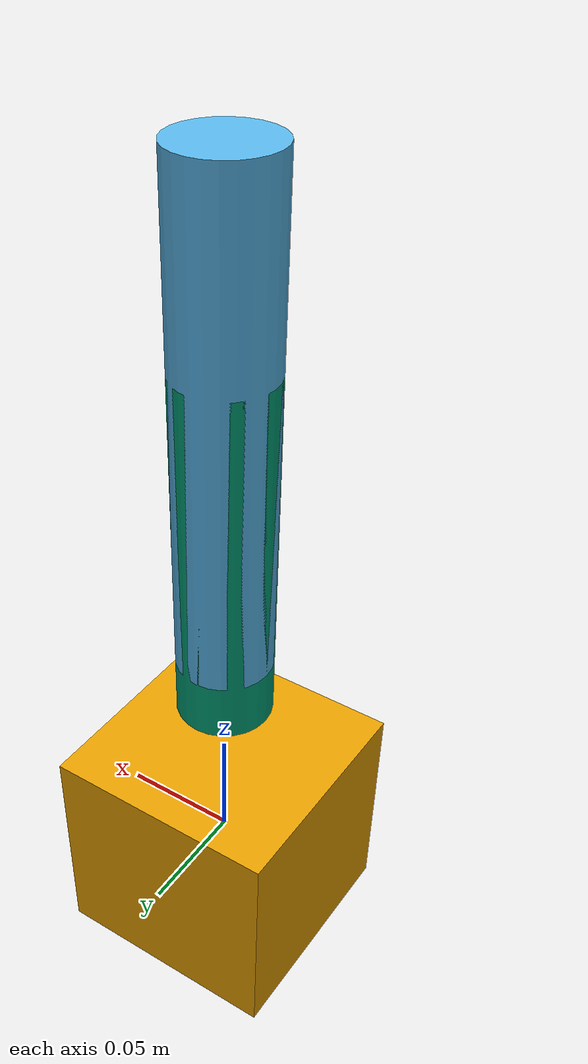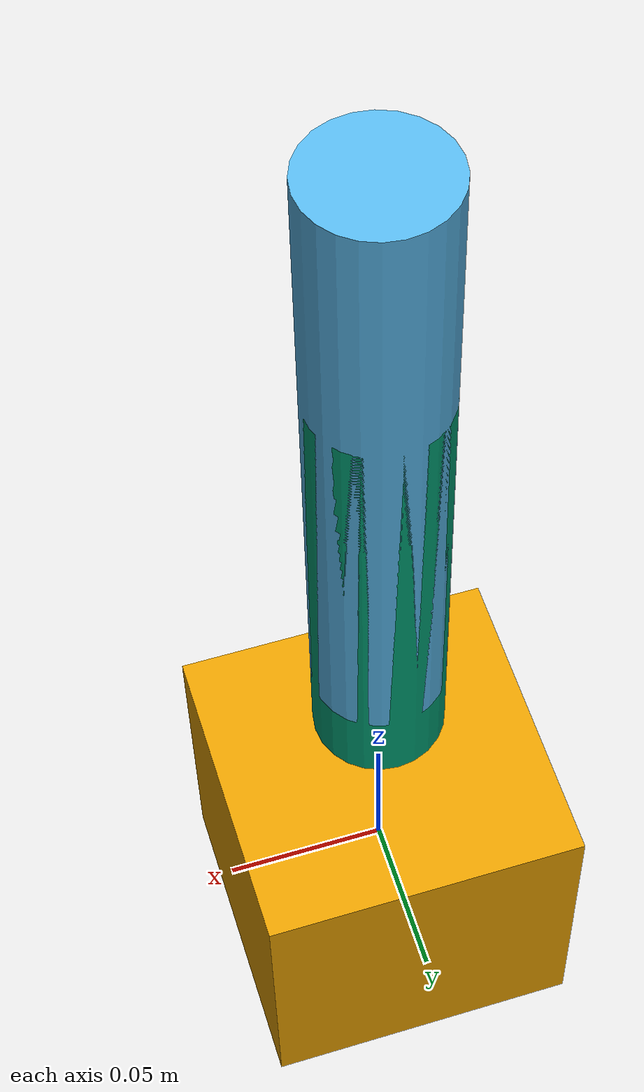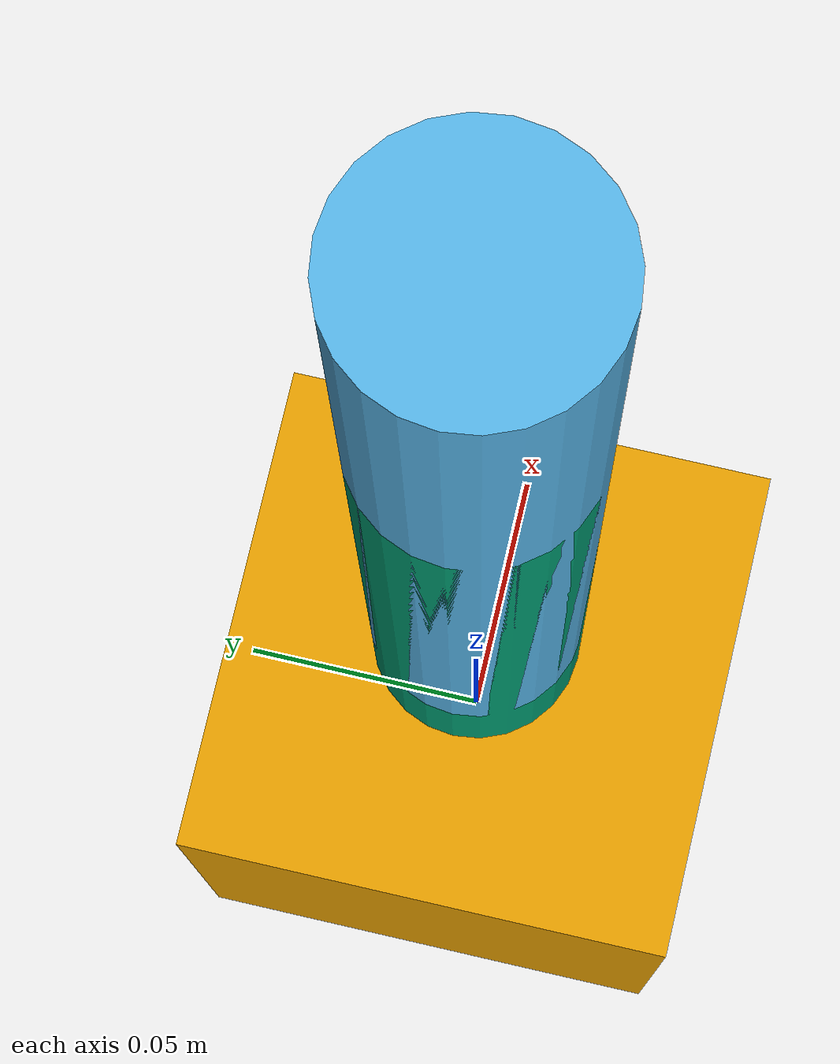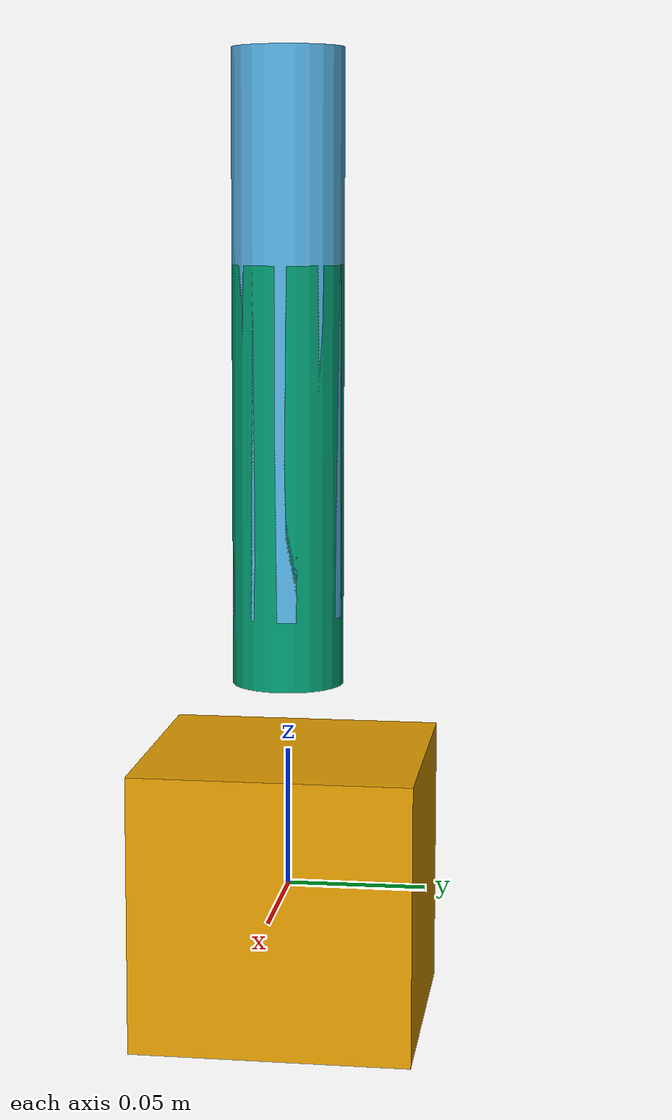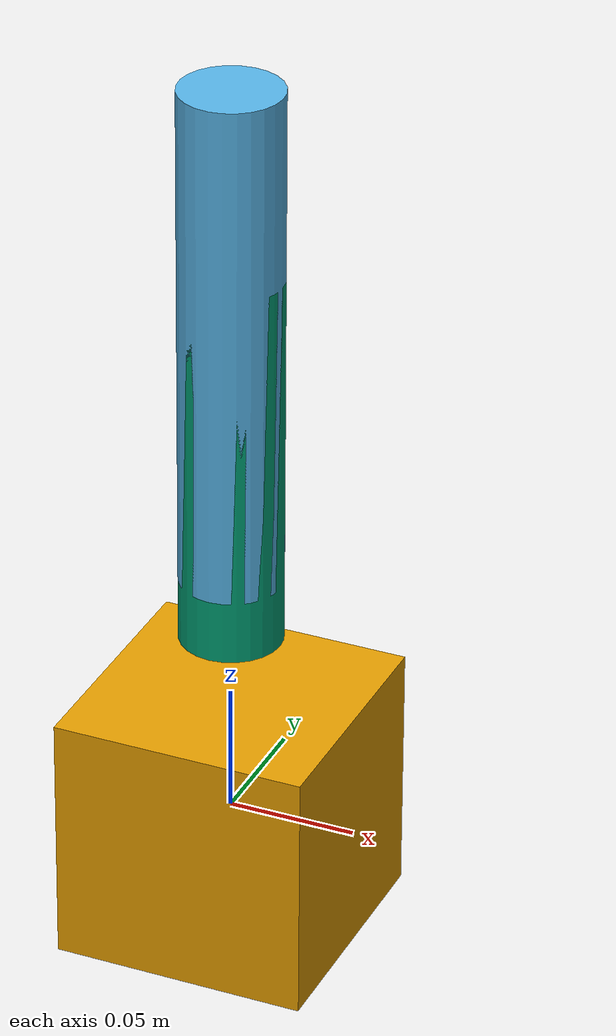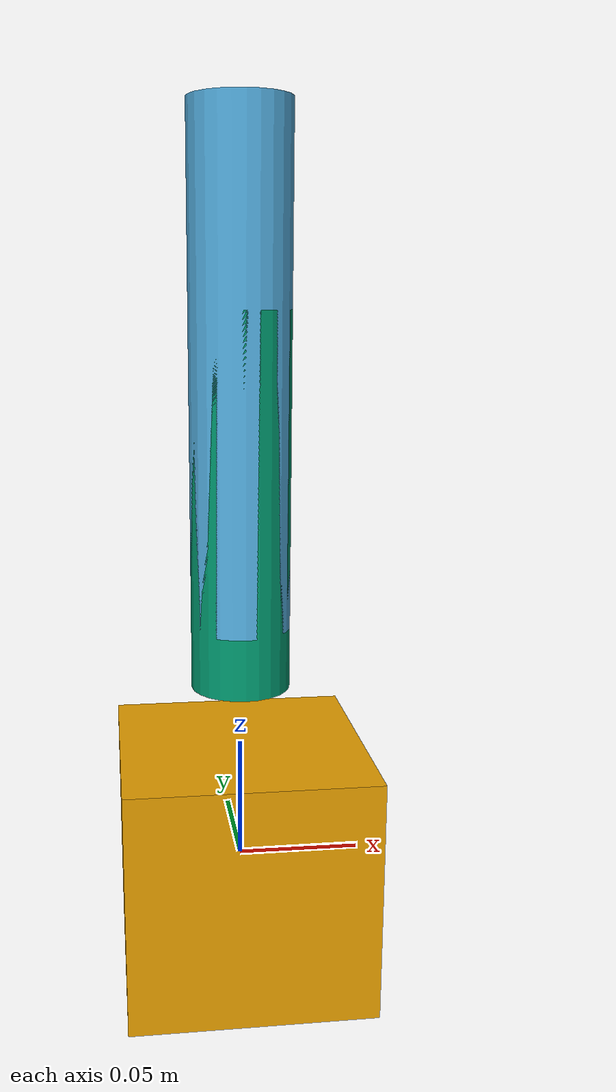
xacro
<?xml version="1.0"?>
<robot name="aly_arm" xmlns:xacro="http://www.ros.org/wiki/xacro">

  <link name="base_link">
    <visual>
      <geometry>
        <box size="0.1 0.1 0.1"/>
      </geometry>
    </visual>
  </link>

  <link name="link_1">
    <visual>
      <geometry>
        <cylinder length="0.2" radius="0.02"/>
      </geometry>
    </visual>
  </link>

  <joint name="joint_1" type="revolute">
    <parent link="base_link"/>
    <child link="link_1"/>
    <origin xyz="0 0 0.2" rpy="0 0 0"/>
    <axis xyz="0 0 1"/>
    <limit lower="-3.14" upper="3.14" effort="10" velocity="1"/>
  </joint>

  <link name="link_2">
    <visual>
      <geometry>
        <cylinder length="0.15" radius="0.02"/>
      </geometry>
    </visual>
  </link>

  <joint name="joint_2" type="revolute">
    <parent link="base_link"/>
    <child link="link_2"/>
    <origin xyz="0 0 0.15" rpy="0 0 0"/>
    <axis xyz="0 0 1"/>
    <limit lower="-1.57" upper="1.57" effort="10" velocity="1"/>
  </joint>

</robot>
